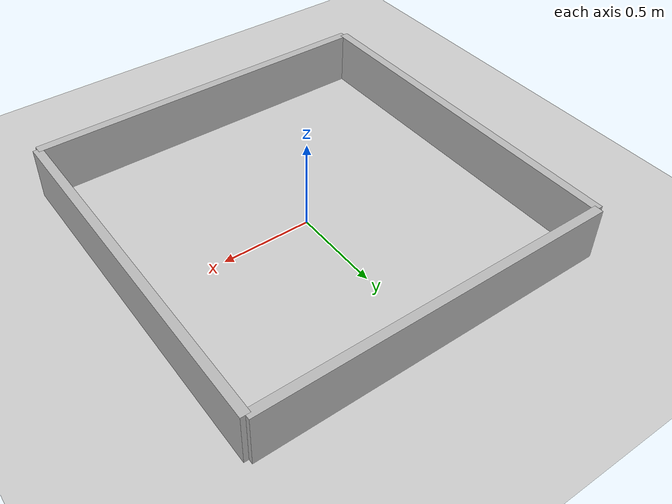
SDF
<?xml version="1.0" ?>
<sdf version="1.5">
  <world name="default">
    <include>
      <uri>model://sun</uri>
    </include>
    <include>
      <uri>model://ground_plane</uri>
    </include>

    <model name="wall_1">
      <pose>0 0 0.15 0 0 0</pose>
      <link name="wall_1">
        <pose>1 0 0 0 0 0</pose>
        <visual name="wall_1_visual">
          <geometry>
            <box>
              <size>0.05 2 0.3</size>
            </box>
          </geometry>
        </visual>
        <collision name="wall_1_collision">
          <geometry>
            <box>
              <size>0.05 2 0.3</size>
            </box>
          </geometry>
        </collision>
      </link>

      <link name="wall_2">
        <pose>-1 0 0 0 0 0</pose>
        <visual name="wall_2_visual">
          <geometry>
            <box>
              <size>0.05 2 0.3</size>
            </box>
          </geometry>
        </visual>
        <collision name="wall_2_collision">
          <geometry>
            <box>
              <size>0.05 2 0.3</size>
            </box>
          </geometry>
        </collision>
      </link>

      <link name="wall_3">
        <pose>0 1 0 0 0 0</pose>
        <visual name="wall_3_visual">
          <geometry>
            <box>
              <size>2 0.05 0.3</size>
            </box>
          </geometry>
        </visual>
        <collision name="wall_3_collision">
          <geometry>
            <box>
              <size>2 0.05 0.3</size>
            </box>
          </geometry>
        </collision>
      </link>

      <link name="wall_4">
        <pose>0 -1 0 0 0 0</pose>
        <visual name="wall_4_visual">
          <geometry>
            <box>
              <size>2 0.05 0.3</size>
            </box>
          </geometry>
        </visual>
        <collision name="wall_4_collision">
          <geometry>
            <box>
              <size>2 0.05 0.3</size>
            </box>
          </geometry>
        </collision>
      </link>
    </model>
  </world>
</sdf>
